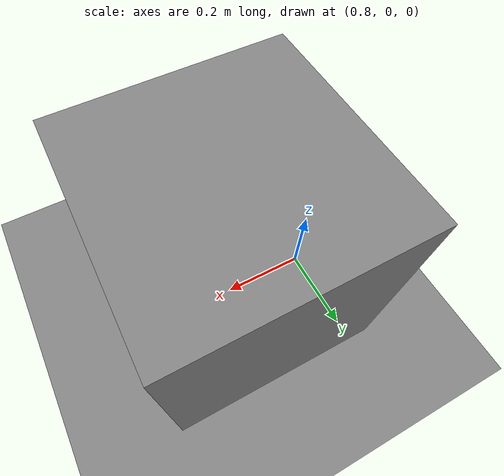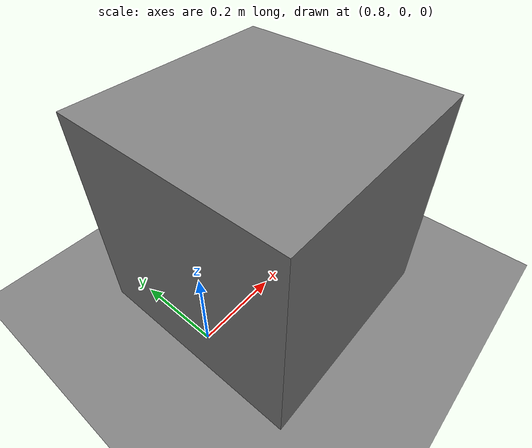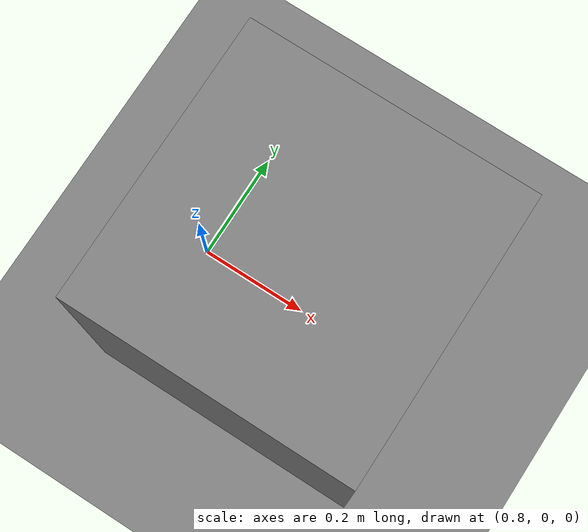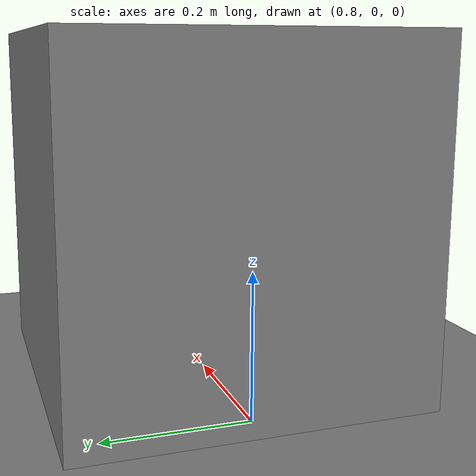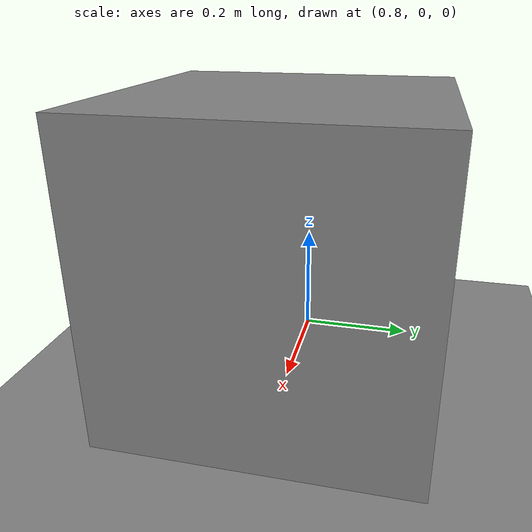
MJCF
<mujoco model="lingtu_scene_world_static_body">
  <option timestep="0.002" gravity="0 0 -9.81"/>
  <worldbody>
    <geom name="floor" type="plane" size="2 2 0.1"/>
    <body name="static_prop" pos="1 0 0.25">
      <geom name="static_prop_collision" type="box" size="0.25 0.25 0.25"/>
    </body>
  </worldbody>
</mujoco>
